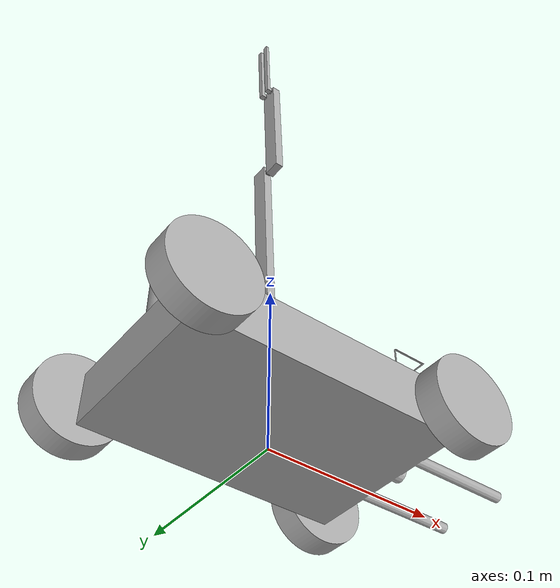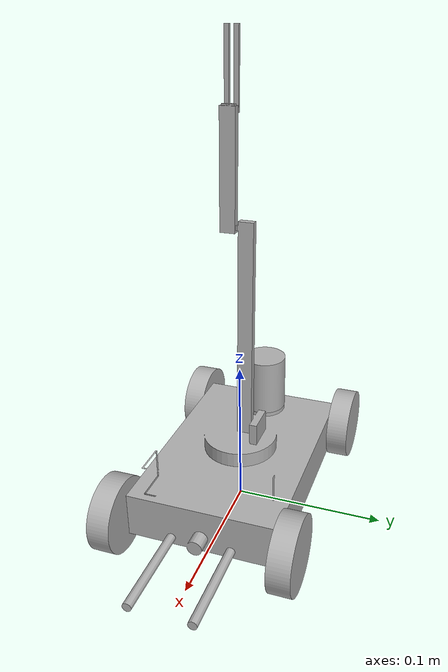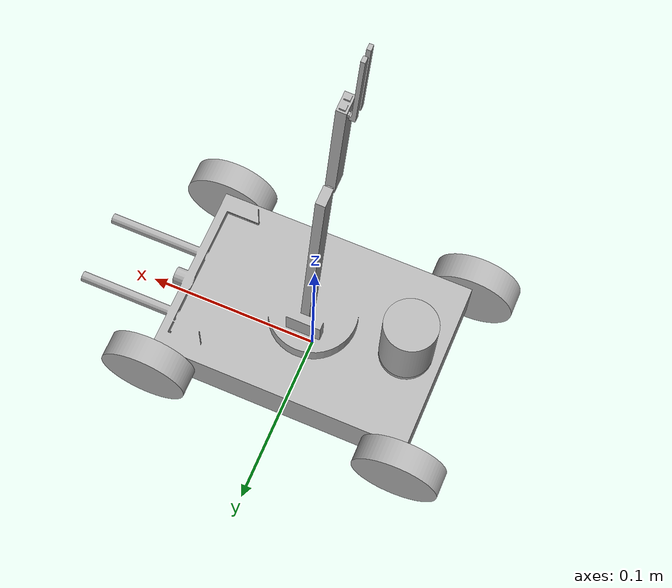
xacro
<?xml version="1.0" ?>
<robot name="hashcode_model" xmlns:xacro="http://www.ros.org/wiki/xacro">

<xacro:include filename="$(find hashcode_model_description)/urdf/materials.xacro" />
<xacro:include filename="$(find hashcode_model_description)/urdf/hashcode_model.trans" />
<xacro:include filename="$(find hashcode_model_description)/urdf/hashcode_model.gazebo" />
<link name="base_link">
  <inertial>
    <origin xyz="0.0 0.0 0.0" rpy="0 0 0"/>
    <mass value="0.0"/>
    <inertia ixx="0.0" iyy="0.0" izz="0.0" ixy="0.0" iyz="0.0" ixz="0.0"/>
  </inertial>
  <visual>
    <origin xyz="0 0 0" rpy="0 0 0"/>
    <geometry>
      <mesh filename="package://hashcode_model_description/meshes/base_link.stl" scale="0.001 0.001 0.001"/>
    </geometry>
    <material name="silver"/>
  </visual>
  <collision>
    <origin xyz="0 0 0" rpy="0 0 0"/>
    <geometry>
      <mesh filename="package://hashcode_model_description/meshes/base_link.stl" scale="0.001 0.001 0.001"/>
    </geometry>
  </collision>
</link>

<link name="lidar_1_1">
  <inertial>
    <origin xyz="-8.195638542818351e-10 0.0 0.020000000000000004" rpy="0 0 0"/>
    <mass value="0.22195352759084938"/>
    <inertia ixx="4.2e-05" iyy="4.2e-05" izz="2.5e-05" ixy="0.0" iyz="-0.0" ixz="0.0"/>
  </inertial>
  <visual>
    <origin xyz="0.055 -0.0 -0.043" rpy="0 0 0"/>
    <geometry>
      <mesh filename="package://hashcode_model_description/meshes/lidar_1_1.stl" scale="0.001 0.001 0.001"/>
    </geometry>
    <material name="silver"/>
  </visual>
  <collision>
    <origin xyz="0.055 -0.0 -0.043" rpy="0 0 0"/>
    <geometry>
      <mesh filename="package://hashcode_model_description/meshes/lidar_1_1.stl" scale="0.001 0.001 0.001"/>
    </geometry>
  </collision>
</link>

<link name="end_effector_right_1_1">
  <inertial>
    <origin xyz="0.017918101862081898 -1.490116155467014e-10 0.012601828357699213" rpy="0 0 0"/>
    <mass value="0.0023314500694826164"/>
    <inertia ixx="0.0" iyy="0.0" izz="0.0" ixy="-0.0" iyz="0.0" ixz="-0.0"/>
  </inertial>
  <visual>
    <origin xyz="-0.1787 0.011 -0.162982" rpy="0 0 0"/>
    <geometry>
      <mesh filename="package://hashcode_model_description/meshes/end_effector_right_1_1.stl" scale="0.001 0.001 0.001"/>
    </geometry>
    <material name="silver"/>
  </visual>
  <collision>
    <origin xyz="-0.1787 0.011 -0.162982" rpy="0 0 0"/>
    <geometry>
      <mesh filename="package://hashcode_model_description/meshes/end_effector_right_1_1.stl" scale="0.001 0.001 0.001"/>
    </geometry>
  </collision>
</link>

<link name="end_effector_left_1_1">
  <inertial>
    <origin xyz="0.017918101862081898 -5.96046467390976e-11 0.012601828357699213" rpy="0 0 0"/>
    <mass value="0.0023314500694826164"/>
    <inertia ixx="0.0" iyy="0.0" izz="0.0" ixy="0.0" iyz="0.0" ixz="-0.0"/>
  </inertial>
  <visual>
    <origin xyz="-0.1787 0.005 -0.162982" rpy="0 0 0"/>
    <geometry>
      <mesh filename="package://hashcode_model_description/meshes/end_effector_left_1_1.stl" scale="0.001 0.001 0.001"/>
    </geometry>
    <material name="silver"/>
  </visual>
  <collision>
    <origin xyz="-0.1787 0.005 -0.162982" rpy="0 0 0"/>
    <geometry>
      <mesh filename="package://hashcode_model_description/meshes/end_effector_left_1_1.stl" scale="0.001 0.001 0.001"/>
    </geometry>
  </collision>
</link>

<link name="arm_link_2_1_1">
  <inertial>
    <origin xyz="0.029590863295727146 -0.0059869220609548215 0.017091845797454985" rpy="0 0 0"/>
    <mass value="0.00449658000123918"/>
    <inertia ixx="1e-06" iyy="2e-06" izz="2e-06" ixy="0.0" iyz="0.0" ixz="-1e-06"/>
  </inertial>
  <visual>
    <origin xyz="-0.121128 0.002 -0.125701" rpy="0 0 0"/>
    <geometry>
      <mesh filename="package://hashcode_model_description/meshes/arm_link_2_1_1.stl" scale="0.001 0.001 0.001"/>
    </geometry>
    <material name="silver"/>
  </visual>
  <collision>
    <origin xyz="-0.121128 0.002 -0.125701" rpy="0 0 0"/>
    <geometry>
      <mesh filename="package://hashcode_model_description/meshes/arm_link_2_1_1.stl" scale="0.001 0.001 0.001"/>
    </geometry>
  </collision>
</link>

<link name="arm_link_1_1_1">
  <inertial>
    <origin xyz="0.061334959889755715 -0.006 0.03367970343905149" rpy="0 0 0"/>
    <mass value="0.008748266414448754"/>
    <inertia ixx="4e-06" iyy="1.6e-05" izz="1.2e-05" ixy="0.0" iyz="0.0" ixz="-7e-06"/>
  </inertial>
  <visual>
    <origin xyz="-0.0 -0.01 -0.0575" rpy="0 0 0"/>
    <geometry>
      <mesh filename="package://hashcode_model_description/meshes/arm_link_1_1_1.stl" scale="0.001 0.001 0.001"/>
    </geometry>
    <material name="silver"/>
  </visual>
  <collision>
    <origin xyz="-0.0 -0.01 -0.0575" rpy="0 0 0"/>
    <geometry>
      <mesh filename="package://hashcode_model_description/meshes/arm_link_1_1_1.stl" scale="0.001 0.001 0.001"/>
    </geometry>
  </collision>
</link>

<link name="left_wheel_back_1_1">
  <inertial>
    <origin xyz="0.0 0.007499999999999986 3.469446951953614e-18" rpy="0 0 0"/>
    <mass value="0.027390760948486005"/>
    <inertia ixx="5e-06" iyy="9e-06" izz="5e-06" ixy="0.0" iyz="0.0" ixz="-0.0"/>
  </inertial>
  <visual>
    <origin xyz="0.075 -0.05 -0.025" rpy="0 0 0"/>
    <geometry>
      <mesh filename="package://hashcode_model_description/meshes/left_wheel_back_1_1.stl" scale="0.001 0.001 0.001"/>
    </geometry>
    <material name="silver"/>
  </visual>
  <collision>
    <origin xyz="0.075 -0.05 -0.025" rpy="0 0 0"/>
    <geometry>
      <mesh filename="package://hashcode_model_description/meshes/left_wheel_back_1_1.stl" scale="0.001 0.001 0.001"/>
    </geometry>
  </collision>
</link>

<link name="right_wheel_front_1_1">
  <inertial>
    <origin xyz="0.0 -0.007500000000000007 3.469446951953614e-18" rpy="0 0 0"/>
    <mass value="0.027390760948486005"/>
    <inertia ixx="5e-06" iyy="9e-06" izz="5e-06" ixy="0.0" iyz="-0.0" ixz="0.0"/>
  </inertial>
  <visual>
    <origin xyz="-0.075 0.05 -0.025" rpy="0 0 0"/>
    <geometry>
      <mesh filename="package://hashcode_model_description/meshes/right_wheel_front_1_1.stl" scale="0.001 0.001 0.001"/>
    </geometry>
    <material name="silver"/>
  </visual>
  <collision>
    <origin xyz="-0.075 0.05 -0.025" rpy="0 0 0"/>
    <geometry>
      <mesh filename="package://hashcode_model_description/meshes/right_wheel_front_1_1.stl" scale="0.001 0.001 0.001"/>
    </geometry>
  </collision>
</link>

<link name="right_wheel_back_1_1">
  <inertial>
    <origin xyz="0.0 -0.007500000000000007 3.469446951953614e-18" rpy="0 0 0"/>
    <mass value="0.027390760948486005"/>
    <inertia ixx="5e-06" iyy="9e-06" izz="5e-06" ixy="-0.0" iyz="-0.0" ixz="-0.0"/>
  </inertial>
  <visual>
    <origin xyz="0.075 0.05 -0.025" rpy="0 0 0"/>
    <geometry>
      <mesh filename="package://hashcode_model_description/meshes/right_wheel_back_1_1.stl" scale="0.001 0.001 0.001"/>
    </geometry>
    <material name="silver"/>
  </visual>
  <collision>
    <origin xyz="0.075 0.05 -0.025" rpy="0 0 0"/>
    <geometry>
      <mesh filename="package://hashcode_model_description/meshes/right_wheel_back_1_1.stl" scale="0.001 0.001 0.001"/>
    </geometry>
  </collision>
</link>

<link name="left_wheel_front_1_1">
  <inertial>
    <origin xyz="0.0 0.007499999999999986 3.469446951953614e-18" rpy="0 0 0"/>
    <mass value="0.027390760948486005"/>
    <inertia ixx="5e-06" iyy="9e-06" izz="5e-06" ixy="-0.0" iyz="0.0" ixz="0.0"/>
  </inertial>
  <visual>
    <origin xyz="-0.075 -0.05 -0.025" rpy="0 0 0"/>
    <geometry>
      <mesh filename="package://hashcode_model_description/meshes/left_wheel_front_1_1.stl" scale="0.001 0.001 0.001"/>
    </geometry>
    <material name="silver"/>
  </visual>
  <collision>
    <origin xyz="-0.075 -0.05 -0.025" rpy="0 0 0"/>
    <geometry>
      <mesh filename="package://hashcode_model_description/meshes/left_wheel_front_1_1.stl" scale="0.001 0.001 0.001"/>
    </geometry>
  </collision>
</link>

<joint name="Revolute 26" type="continuous">
  <origin xyz="-0.055 0.0 0.043" rpy="0 0 0"/>
  <parent link="base_link"/>
  <child link="lidar_1_1"/>
  <axis xyz="0.0 0.0 1.0"/>
</joint>

<joint name="Revolute 28" type="revolute">
  <origin xyz="0.057572 -0.009 0.037281" rpy="0 0 0"/>
  <parent link="arm_link_2_1_1"/>
  <child link="end_effector_right_1_1"/>
  <axis xyz="-0.5 0.0 0.866025"/>
  <limit upper="1.047198" lower="0.0" effort="100" velocity="100"/>
</joint>

<joint name="Revolute 29" type="revolute">
  <origin xyz="0.057572 -0.003 0.037281" rpy="0 0 0"/>
  <parent link="arm_link_2_1_1"/>
  <child link="end_effector_left_1_1"/>
  <axis xyz="-0.5 0.0 0.866025"/>
  <limit upper="1.047198" lower="0.0" effort="100" velocity="100"/>
</joint>

<joint name="Revolute 30" type="revolute">
  <origin xyz="0.121128 -0.012 0.068201" rpy="0 0 0"/>
  <parent link="arm_link_1_1_1"/>
  <child link="arm_link_2_1_1"/>
  <axis xyz="0.0 -1.0 0.0"/>
  <limit upper="0.523599" lower="-1.658063" effort="100" velocity="100"/>
</joint>

<joint name="Revolute 31" type="revolute">
  <origin xyz="0.0 0.01 0.0575" rpy="0 0 0"/>
  <parent link="base_link"/>
  <child link="arm_link_1_1_1"/>
  <axis xyz="0.0 -1.0 0.0"/>
  <limit upper="1.658063" lower="0.523599" effort="100" velocity="100"/>
</joint>

<joint name="Revolute 33" type="continuous">
  <origin xyz="-0.075 0.05 0.025" rpy="0 0 0"/>
  <parent link="base_link"/>
  <child link="left_wheel_back_1_1"/>
  <axis xyz="0.0 1.0 0.0"/>
</joint>

<joint name="Revolute 34" type="continuous">
  <origin xyz="0.075 -0.05 0.025" rpy="0 0 0"/>
  <parent link="base_link"/>
  <child link="right_wheel_front_1_1"/>
  <axis xyz="0.0 -1.0 0.0"/>
</joint>

<joint name="Revolute 35" type="continuous">
  <origin xyz="-0.075 -0.05 0.025" rpy="0 0 0"/>
  <parent link="base_link"/>
  <child link="right_wheel_back_1_1"/>
  <axis xyz="0.0 -1.0 0.0"/>
</joint>

<joint name="Revolute 36" type="continuous">
  <origin xyz="0.075 0.05 0.025" rpy="0 0 0"/>
  <parent link="base_link"/>
  <child link="left_wheel_front_1_1"/>
  <axis xyz="0.0 1.0 0.0"/>
</joint>

</robot>

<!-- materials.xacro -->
<robot name="hashcode_model" xmlns:xacro="http://www.ros.org/wiki/xacro" >

<material name="silver">
  <color rgba="0.700 0.700 0.700 1.000"/>
</material>

</robot>

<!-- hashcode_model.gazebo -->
<robot name="hashcode_model" xmlns:xacro="http://www.ros.org/wiki/xacro" >

<xacro:property name="body_color" value="Gazebo/Silver" />

<gazebo>
  <plugin name="control" filename="libgazebo_ros_control.so"/>
</gazebo>
<gazebo reference="base_link">
  <material>${body_color}</material>
  <mu1>0.2</mu1>
  <mu2>0.2</mu2>
  <selfCollide>true</selfCollide>
  <gravity>true</gravity>
</gazebo>

<gazebo reference="lidar_1_1">
  <material>${body_color}</material>
  <mu1>0.2</mu1>
  <mu2>0.2</mu2>
  <selfCollide>true</selfCollide>
</gazebo>

<gazebo reference="end_effector_right_1_1">
  <material>${body_color}</material>
  <mu1>0.2</mu1>
  <mu2>0.2</mu2>
  <selfCollide>true</selfCollide>
</gazebo>

<gazebo reference="end_effector_left_1_1">
  <material>${body_color}</material>
  <mu1>0.2</mu1>
  <mu2>0.2</mu2>
  <selfCollide>true</selfCollide>
</gazebo>

<gazebo reference="arm_link_2_1_1">
  <material>${body_color}</material>
  <mu1>0.2</mu1>
  <mu2>0.2</mu2>
  <selfCollide>true</selfCollide>
</gazebo>

<gazebo reference="arm_link_1_1_1">
  <material>${body_color}</material>
  <mu1>0.2</mu1>
  <mu2>0.2</mu2>
  <selfCollide>true</selfCollide>
</gazebo>

<gazebo reference="left_wheel_back_1_1">
  <material>${body_color}</material>
  <mu1>0.2</mu1>
  <mu2>0.2</mu2>
  <selfCollide>true</selfCollide>
</gazebo>

<gazebo reference="right_wheel_front_1_1">
  <material>${body_color}</material>
  <mu1>0.2</mu1>
  <mu2>0.2</mu2>
  <selfCollide>true</selfCollide>
</gazebo>

<gazebo reference="right_wheel_back_1_1">
  <material>${body_color}</material>
  <mu1>0.2</mu1>
  <mu2>0.2</mu2>
  <selfCollide>true</selfCollide>
</gazebo>

<gazebo reference="left_wheel_front_1_1">
  <material>${body_color}</material>
  <mu1>0.2</mu1>
  <mu2>0.2</mu2>
  <selfCollide>true</selfCollide>
</gazebo>

</robot>
